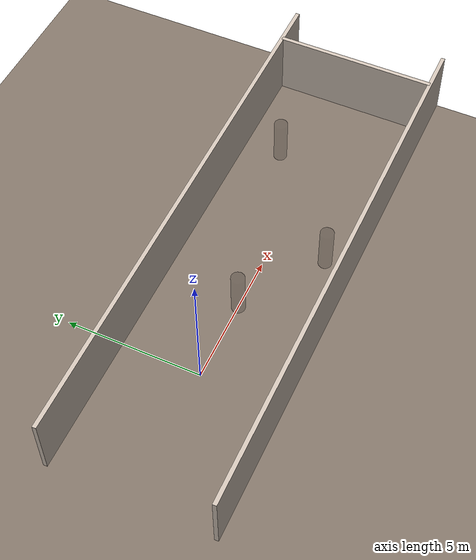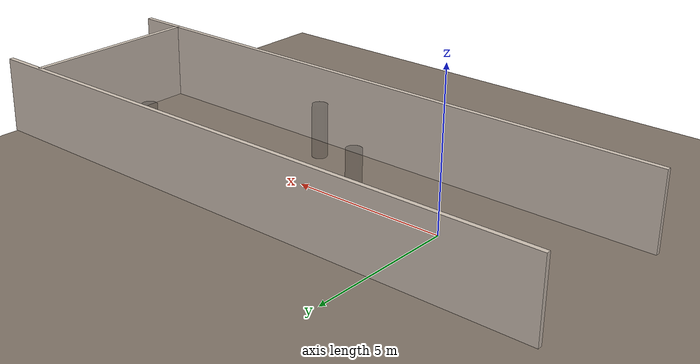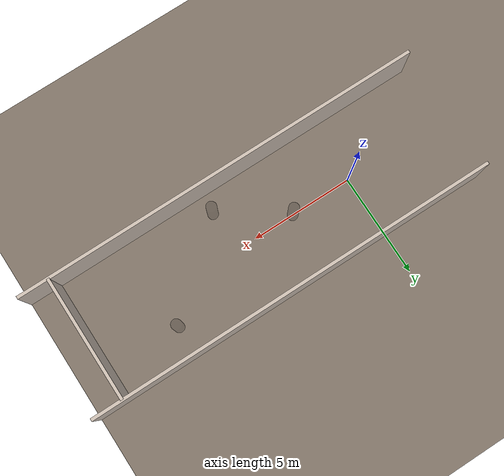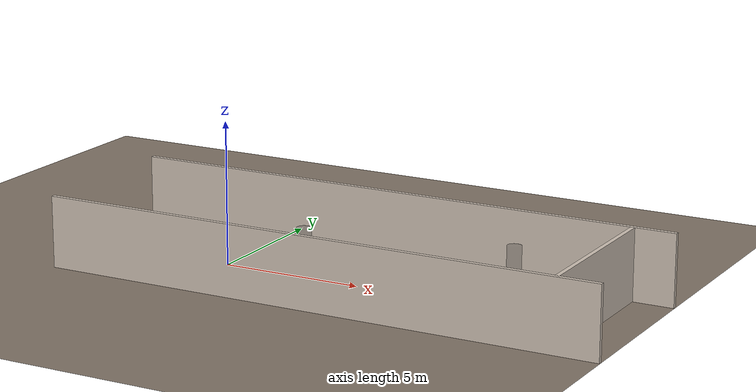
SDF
<sdf version="1.6">
 <world name="ranger_multi_people">
  <scene>
   <ambient>0.4 0.4 0.4 1.0</ambient>
   <background>0.7 0.8 0.9 1.0</background>
   <shadows>true</shadows>
  </scene>
  <include><uri>model://sun</uri></include>
  <include><uri>model://ground_plane</uri></include>
  <model name="lab_floor">
   <static>true</static>
   <pose>0 0 -0.005 0 0 0</pose>
   <link name="floor_link">
    <visual name="floor_visual">
     <geometry><plane><normal>0 0 1</normal><size>30 30</size></plane></geometry>
     <material><ambient>0.5 0.45 0.4 1.0</ambient><diffuse>0.5 0.45 0.4 1.0</diffuse></material>
    </visual>
   </link>
  </model>
  <model name="wall_north">
   <static>true</static>
   <pose>5 3 1.25 0 0 0</pose>
   <link name="link">
    <visual name="v">
     <geometry><box><size>20 0.15 2.5</size></box></geometry>
     <material><ambient>0.8 0.75 0.7 1.0</ambient></material>
    </visual>
    <collision name="c"><geometry><box><size>20 0.15 2.5</size></box></geometry></collision>
   </link>
  </model>
  <model name="wall_south">
   <static>true</static>
   <pose>5 -3 1.25 0 0 0</pose>
   <link name="link">
    <visual name="v">
     <geometry><box><size>20 0.15 2.5</size></box></geometry>
     <material><ambient>0.8 0.75 0.7 1.0</ambient></material>
    </visual>
    <collision name="c"><geometry><box><size>20 0.15 2.5</size></box></geometry></collision>
   </link>
  </model>
  <model name="wall_east">
   <static>true</static>
   <pose>13.5 0 1.25 0 0 0</pose>
   <link name="link">
    <visual name="v">
     <geometry><box><size>0.15 6 2.5</size></box></geometry>
     <material><ambient>0.8 0.75 0.7 1.0</ambient></material>
    </visual>
    <collision name="c"><geometry><box><size>0.15 6 2.5</size></box></geometry></collision>
   </link>
  </model>
  <model name="person_1_proxy">
   <static>false</static>
   <pose>6.0 -2.0 0.875 0 0 0</pose>
   <link name="proxy_link">
    <visual name="proxy_visual">
     <geometry><cylinder><radius>0.25</radius><length>1.75</length></cylinder></geometry>
     <material><ambient>0 0 0 0.05</ambient></material>
     <transparency>0.95</transparency>
     <cast_shadows>false</cast_shadows>
    </visual>
    <collision name="proxy_collision">
     <geometry><cylinder><radius>0.25</radius><length>1.75</length></cylinder></geometry>
    </collision>
   </link>
  </model>
  <model name="person_2_proxy">
   <static>false</static>
   <pose>3.0 0.0 0.875 0 0 0</pose>
   <link name="proxy_link">
    <visual name="proxy_visual">
     <geometry><cylinder><radius>0.25</radius><length>1.75</length></cylinder></geometry>
     <material><ambient>0 0 0 0.05</ambient></material>
     <transparency>0.95</transparency>
     <cast_shadows>false</cast_shadows>
    </visual>
    <collision name="proxy_collision">
     <geometry><cylinder><radius>0.25</radius><length>1.75</length></cylinder></geometry>
    </collision>
   </link>
  </model>
  <model name="person_3_proxy">
   <static>false</static>
   <pose>10.0 1.5 0.875 0 0 0</pose>
   <link name="proxy_link">
    <visual name="proxy_visual">
     <geometry><cylinder><radius>0.25</radius><length>1.75</length></cylinder></geometry>
     <material><ambient>0 0 0 0.05</ambient></material>
     <transparency>0.95</transparency>
     <cast_shadows>false</cast_shadows>
    </visual>
    <collision name="proxy_collision">
     <geometry><cylinder><radius>0.25</radius><length>1.75</length></cylinder></geometry>
    </collision>
   </link>
  </model>
  <gravity>0 0 -9.8</gravity>
  <physics name="default_physics" type="ode">
   <max_step_size>0.001</max_step_size>
   <real_time_factor>1.0</real_time_factor>
   <real_time_update_rate>1000.0</real_time_update_rate>
  </physics>
 </world>
</sdf>
